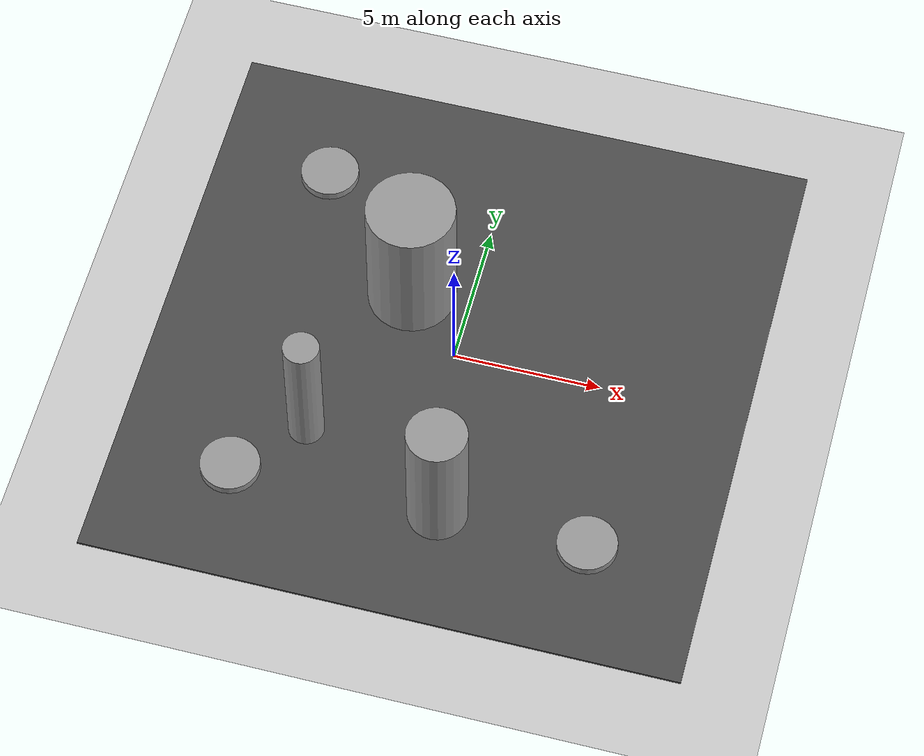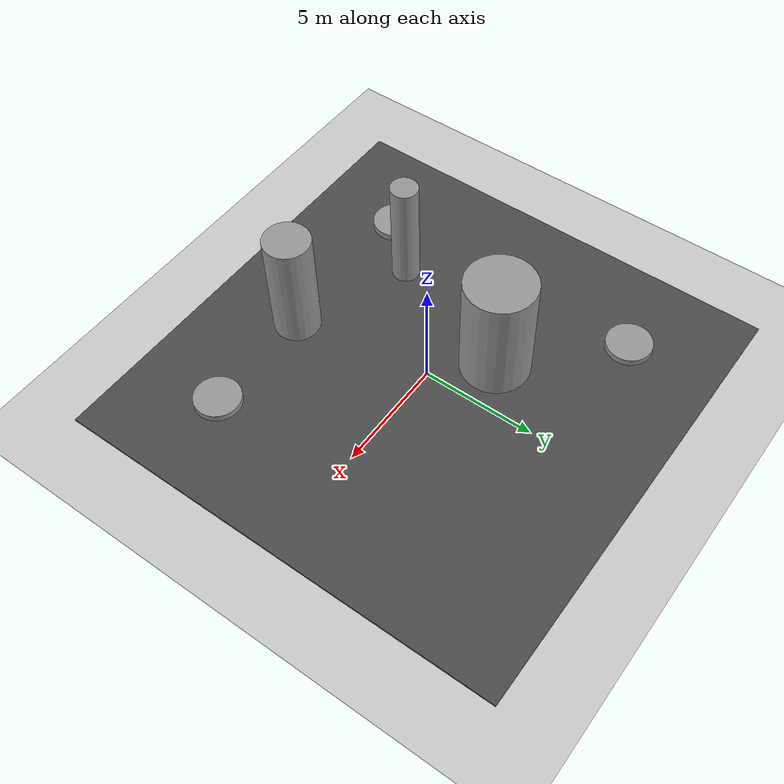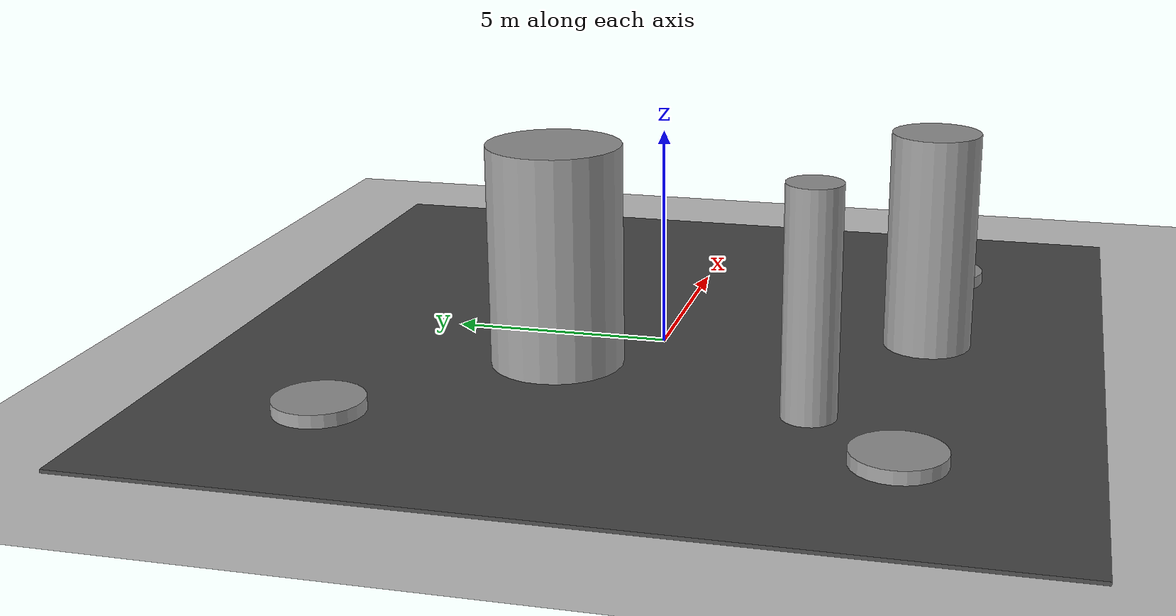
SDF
<sdf version="1.6">
 <world name="default">
  <light name="sun" type="directional">
   <pose>0 0 10 0 -0 0</pose>
   <diffuse>0.8 0.8 0.8 1</diffuse>
   <specular>0.2 0.2 0.2 1</specular>
   <attenuation>
    <range>1000</range>
    <constant>0.9</constant>
    <linear>0.01</linear>
    <quadratic>0.001</quadratic>
   </attenuation>
   <direction>-0.5 0.1 -0.9</direction>
  </light>
  <model name="ground_plane">
   <static>1</static>
   <link name="link">
    <collision name="collision">
     <geometry><plane><normal>0 0 1</normal><size>100 100</size></plane></geometry>
     <surface>
      <contact><collide_bitmask>65535</collide_bitmask></contact>
      <friction><ode><mu>100</mu><mu2>50</mu2></ode></friction>
     </surface>
    </collision>
    <visual name="visual">
     <cast_shadows>0</cast_shadows>
     <geometry><plane><normal>0 0 1</normal><size>100 100</size></plane></geometry>
     <material>
      <script><uri>file://media/materials/scripts/gazebo.material</uri><name>Gazebo/Grey</name></script>
     </material>
    </visual>
   </link>
  </model>
  <model name="asphalt_plane">
   <static>1</static>
   <link name="link">
    <collision name="collision"><geometry><box><size>20 20 0.1</size></box></geometry></collision>
    <visual name="visual">
     <cast_shadows>0</cast_shadows>
     <geometry><box><size>20 20 0.1</size></box></geometry>
     <material>
      <script>
       <uri>model://asphalt_plane/materials/scripts</uri>
       <uri>model://asphalt_plane/materials/textures</uri>
       <name>vrc/asphalt</name>
      </script>
     </material>
    </visual>
   </link>
  </model>
  <physics name="default_physics" default="0" type="ode">
   <ode>
    <solver>
     <type>quick</type>
     <iters>10</iters>
     <sor>1.3</sor>
     <use_dynamic_moi_rescaling>0</use_dynamic_moi_rescaling>
    </solver>
    <constraints>
     <cfm>0</cfm>
     <erp>0.2</erp>
     <contact_max_correcting_vel>100</contact_max_correcting_vel>
     <contact_surface_layer>0.001</contact_surface_layer>
    </constraints>
   </ode>
   <max_step_size>0.004</max_step_size>
   <real_time_factor>1</real_time_factor>
   <real_time_update_rate>250</real_time_update_rate>
  </physics>
  <gravity>0 0 -9.8066</gravity>
  <magnetic_field>6e-06 2.3e-05 -4.2e-05</magnetic_field>
  <atmosphere type="adiabatic"/>
  <scene><ambient>0.4 0.4 0.4 1</ambient><background>0.7 0.7 0.7 1</background><shadows>1</shadows></scene>
  <spherical_coordinates>
   <surface_model>EARTH_WGS84</surface_model>
   <latitude_deg>0</latitude_deg>
   <longitude_deg>0</longitude_deg>
   <elevation>0</elevation>
   <heading_deg>0</heading_deg>
  </spherical_coordinates>
  <model name="unit_cylinder">
   <pose>-3.99695 -4.00052 2.54985 6e-06 -5e-06 0.005139</pose>
   <link name="link">
    <inertial>
     <mass>1</mass>
     <inertia><ixx>0.145833</ixx><ixy>0</ixy><ixz>0</ixz><iyy>0.145833</iyy><iyz>0</iyz><izz>0.125</izz></inertia>
    </inertial>
    <collision name="collision">
     <geometry><cylinder><radius>0.6</radius><length>5</length></cylinder></geometry>
    </collision>
    <visual name="visual">
     <geometry><cylinder><radius>0.6</radius><length>5</length></cylinder></geometry>
     <material>
      <script><name>Gazebo/Grey</name><uri>file://media/materials/scripts/gazebo.material</uri></script>
     </material>
    </visual>
   </link>
  </model>
  <model name="unit_cylinder_0">
   <pose>-6.00382 -6.04806 0.199958 7.5e-05 -9e-06 0.004312</pose>
   <link name="link">
    <inertial>
     <mass>1</mass>
     <inertia><ixx>0.145833</ixx><ixy>0</ixy><ixz>0</ixz><iyy>0.145833</iyy><iyz>0</iyz><izz>0.125</izz></inertia>
    </inertial>
    <collision name="collision">
     <geometry><cylinder><radius>1</radius><length>0.3</length></cylinder></geometry>
    </collision>
    <visual name="visual">
     <geometry><cylinder><radius>1</radius><length>0.3</length></cylinder></geometry>
     <material>
      <script><name>Gazebo/Grey</name><uri>file://media/materials/scripts/gazebo.material</uri></script>
     </material>
    </visual>
   </link>
  </model>
  <model name="unit_cylinder_clone">
   <pose>1 -6.00681 2.55001 1.9e-05 1.7e-05 0.028295</pose>
   <link name="link">
    <inertial>
     <mass>1</mass>
     <inertia><ixx>0.145833</ixx><ixy>0</ixy><ixz>0</ixz><iyy>0.145833</iyy><iyz>0</iyz><izz>0.125</izz></inertia>
    </inertial>
    <collision name="collision">
     <geometry><cylinder><radius>1</radius><length>5</length></cylinder></geometry>
    </collision>
    <visual name="visual">
     <geometry><cylinder><radius>1</radius><length>5</length></cylinder></geometry>
     <material>
      <script><name>Gazebo/Grey</name><uri>file://media/materials/scripts/gazebo.material</uri></script>
     </material>
    </visual>
   </link>
  </model>
  <model name="unit_cylinder_0_clone">
   <pose>5.99993 -6 0.199958 7.5e-05 -7e-06 -0.000138</pose>
   <link name="link">
    <inertial>
     <mass>1</mass>
     <inertia><ixx>0.145833</ixx><ixy>0</ixy><ixz>0</ixz><iyy>0.145833</iyy><iyz>0</iyz><izz>0.125</izz></inertia>
    </inertial>
    <collision name="collision">
     <geometry><cylinder><radius>1</radius><length>0.3</length></cylinder></geometry>
    </collision>
    <visual name="visual">
     <geometry><cylinder><radius>1</radius><length>0.3</length></cylinder></geometry>
     <material>
      <script><name>Gazebo/Grey</name><uri>file://media/materials/scripts/gazebo.material</uri></script>
     </material>
    </visual>
   </link>
  </model>
  <model name="unit_cylinder_0_clone_clone">
   <pose>-5.99988 5.99998 0.199955 1.5e-05 7e-05 -0.000377</pose>
   <link name="link">
    <inertial>
     <mass>1</mass>
     <inertia><ixx>0.145833</ixx><ixy>0</ixy><ixz>0</ixz><iyy>0.145833</iyy><iyz>0</iyz><izz>0.125</izz></inertia>
    </inertial>
    <collision name="collision">
     <geometry><cylinder><radius>1</radius><length>0.3</length></cylinder></geometry>
    </collision>
    <visual name="visual">
     <geometry><cylinder><radius>1</radius><length>0.3</length></cylinder></geometry>
     <material>
      <script><name>Gazebo/Grey</name><uri>file://media/materials/scripts/gazebo.material</uri></script>
     </material>
    </visual>
   </link>
  </model>
  <model name="unit_cylinder_clone_clone">
   <pose>-2 2 2.54987 1.5e-05 1e-06 0.028062</pose>
   <link name="link">
    <inertial>
     <mass>1</mass>
     <inertia><ixx>0.145833</ixx><ixy>0</ixy><ixz>0</ixz><iyy>0.145833</iyy><iyz>0</iyz><izz>0.125</izz></inertia>
    </inertial>
    <collision name="collision">
     <geometry><cylinder><radius>1.5</radius><length>5</length></cylinder></geometry>
    </collision>
    <visual name="visual">
     <geometry><cylinder><radius>1.5</radius><length>5</length></cylinder></geometry>
     <material>
      <script><name>Gazebo/Grey</name><uri>file://media/materials/scripts/gazebo.material</uri></script>
     </material>
    </visual>
   </link>
  </model>
 </world>
</sdf>
